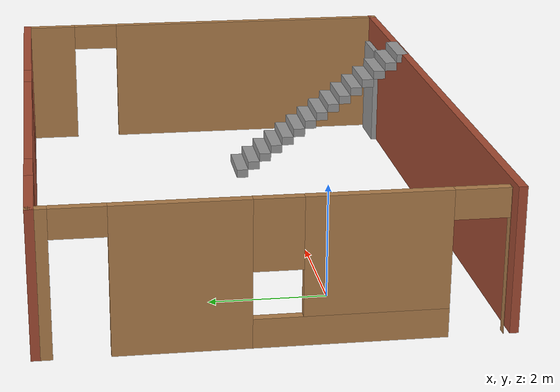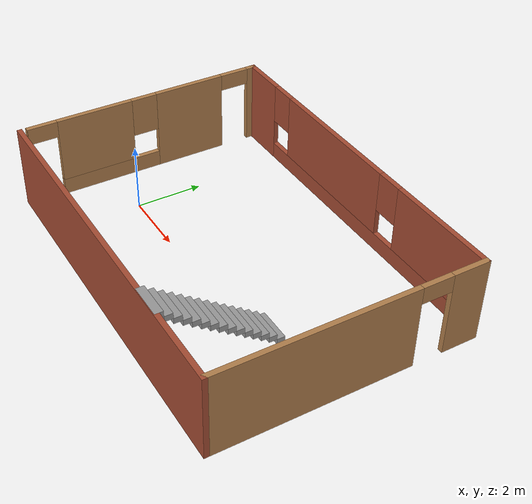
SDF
<?xml version='1.0'?>
<sdf version='1.7'>
  <model name='model1'>
    <pose>3.7072 1.08498 0 0 -0 0</pose>
    <link name='Door_2'>
      <collision name='Door_2_Collision'>
        <geometry>
          <box>
            <size>0.9 0.17 2</size>
          </box>
        </geometry>
        <pose>0 0 1 0 -0 0</pose>
      </collision>
      <visual name='Door_2_Visual'>
        <pose>0 0 1 0 -0 0</pose>
        <geometry>
          <box>
            <size>0.9 0.17 2</size>
          </box>
        </geometry>
        <material>
          <script>
            <uri>file://media/materials/scripts/gazebo.material</uri>
            <name>Gazebo/Grey</name>
          </script>
        </material>
      </visual>
      <pose>4.76464 -3.70007 0 0 -0 0</pose>
    </link>
    <link name='Stairs_0'>
      <visual name='Stairs_0_Visual_0'>
        <pose>2.74302 -0.470728 0.083333 0 -0 0</pose>
        <geometry>
          <box>
            <size>1 0.233333 0.166667</size>
          </box>
        </geometry>
        <material>
          <script>
            <uri>file://media/materials/scripts/gazebo.material</uri>
            <name>Gazebo/Grey</name>
          </script>
          <ambient>1 1 1 1</ambient>
        </material>
        <meta>
          <layer>0</layer>
        </meta>
      </visual>
      <collision name='Stairs_0_Collision_0'>
        <geometry>
          <box>
            <size>1 0.233333 0.166667</size>
          </box>
        </geometry>
        <pose>2.74302 -0.470728 0.083333 0 -0 0</pose>
      </collision>
      <visual name='Stairs_0_Visual_1'>
        <pose>2.74302 -0.704061 0.25 0 -0 0</pose>
        <geometry>
          <box>
            <size>1 0.233333 0.166667</size>
          </box>
        </geometry>
        <material>
          <script>
            <uri>file://media/materials/scripts/gazebo.material</uri>
            <name>Gazebo/Grey</name>
          </script>
          <ambient>1 1 1 1</ambient>
        </material>
        <meta>
          <layer>0</layer>
        </meta>
      </visual>
      <collision name='Stairs_0_Collision_1'>
        <geometry>
          <box>
            <size>1 0.233333 0.166667</size>
          </box>
        </geometry>
        <pose>2.74302 -0.704061 0.25 0 -0 0</pose>
      </collision>
      <visual name='Stairs_0_Visual_2'>
        <pose>2.74302 -0.937394 0.416667 0 -0 0</pose>
        <geometry>
          <box>
            <size>1 0.233333 0.166667</size>
          </box>
        </geometry>
        <material>
          <script>
            <uri>file://media/materials/scripts/gazebo.material</uri>
            <name>Gazebo/Grey</name>
          </script>
          <ambient>1 1 1 1</ambient>
        </material>
        <meta>
          <layer>0</layer>
        </meta>
      </visual>
      <collision name='Stairs_0_Collision_2'>
        <geometry>
          <box>
            <size>1 0.233333 0.166667</size>
          </box>
        </geometry>
        <pose>2.74302 -0.937394 0.416667 0 -0 0</pose>
      </collision>
      <visual name='Stairs_0_Visual_3'>
        <pose>2.74302 -1.17073 0.583333 0 -0 0</pose>
        <geometry>
          <box>
            <size>1 0.233333 0.166667</size>
          </box>
        </geometry>
        <material>
          <script>
            <uri>file://media/materials/scripts/gazebo.material</uri>
            <name>Gazebo/Grey</name>
          </script>
          <ambient>1 1 1 1</ambient>
        </material>
        <meta>
          <layer>0</layer>
        </meta>
      </visual>
      <collision name='Stairs_0_Collision_3'>
        <geometry>
          <box>
            <size>1 0.233333 0.166667</size>
          </box>
        </geometry>
        <pose>2.74302 -1.17073 0.583333 0 -0 0</pose>
      </collision>
      <visual name='Stairs_0_Visual_4'>
        <pose>2.74302 -1.40406 0.75 0 -0 0</pose>
        <geometry>
          <box>
            <size>1 0.233333 0.166667</size>
          </box>
        </geometry>
        <material>
          <script>
            <uri>file://media/materials/scripts/gazebo.material</uri>
            <name>Gazebo/Grey</name>
          </script>
          <ambient>1 1 1 1</ambient>
        </material>
        <meta>
          <layer>0</layer>
        </meta>
      </visual>
      <collision name='Stairs_0_Collision_4'>
        <geometry>
          <box>
            <size>1 0.233333 0.166667</size>
          </box>
        </geometry>
        <pose>2.74302 -1.40406 0.75 0 -0 0</pose>
      </collision>
      <visual name='Stairs_0_Visual_5'>
        <pose>2.74302 -1.63739 0.916667 0 -0 0</pose>
        <geometry>
          <box>
            <size>1 0.233333 0.166667</size>
          </box>
        </geometry>
        <material>
          <script>
            <uri>file://media/materials/scripts/gazebo.material</uri>
            <name>Gazebo/Grey</name>
          </script>
          <ambient>1 1 1 1</ambient>
        </material>
        <meta>
          <layer>0</layer>
        </meta>
      </visual>
      <collision name='Stairs_0_Collision_5'>
        <geometry>
          <box>
            <size>1 0.233333 0.166667</size>
          </box>
        </geometry>
        <pose>2.74302 -1.63739 0.916667 0 -0 0</pose>
      </collision>
      <visual name='Stairs_0_Visual_6'>
        <pose>2.74302 -1.87073 1.08333 0 -0 0</pose>
        <geometry>
          <box>
            <size>1 0.233333 0.166667</size>
          </box>
        </geometry>
        <material>
          <script>
            <uri>file://media/materials/scripts/gazebo.material</uri>
            <name>Gazebo/Grey</name>
          </script>
          <ambient>1 1 1 1</ambient>
        </material>
        <meta>
          <layer>0</layer>
        </meta>
      </visual>
      <collision name='Stairs_0_Collision_6'>
        <geometry>
          <box>
            <size>1 0.233333 0.166667</size>
          </box>
        </geometry>
        <pose>2.74302 -1.87073 1.08333 0 -0 0</pose>
      </collision>
      <visual name='Stairs_0_Visual_7'>
        <pose>2.74302 -2.10406 1.25 0 -0 0</pose>
        <geometry>
          <box>
            <size>1 0.233333 0.166667</size>
          </box>
        </geometry>
        <material>
          <script>
            <uri>file://media/materials/scripts/gazebo.material</uri>
            <name>Gazebo/Grey</name>
          </script>
          <ambient>1 1 1 1</ambient>
        </material>
        <meta>
          <layer>0</layer>
        </meta>
      </visual>
      <collision name='Stairs_0_Collision_7'>
        <geometry>
          <box>
            <size>1 0.233333 0.166667</size>
          </box>
        </geometry>
        <pose>2.74302 -2.10406 1.25 0 -0 0</pose>
      </collision>
      <visual name='Stairs_0_Visual_8'>
        <pose>2.74302 -2.33739 1.41667 0 -0 0</pose>
        <geometry>
          <box>
            <size>1 0.233333 0.166667</size>
          </box>
        </geometry>
        <material>
          <script>
            <uri>file://media/materials/scripts/gazebo.material</uri>
            <name>Gazebo/Grey</name>
          </script>
          <ambient>1 1 1 1</ambient>
        </material>
        <meta>
          <layer>0</layer>
        </meta>
      </visual>
      <collision name='Stairs_0_Collision_8'>
        <geometry>
          <box>
            <size>1 0.233333 0.166667</size>
          </box>
        </geometry>
        <pose>2.74302 -2.33739 1.41667 0 -0 0</pose>
      </collision>
      <visual name='Stairs_0_Visual_9'>
        <pose>2.74302 -2.57073 1.58333 0 -0 0</pose>
        <geometry>
          <box>
            <size>1 0.233333 0.166667</size>
          </box>
        </geometry>
        <material>
          <script>
            <uri>file://media/materials/scripts/gazebo.material</uri>
            <name>Gazebo/Grey</name>
          </script>
          <ambient>1 1 1 1</ambient>
        </material>
        <meta>
          <layer>0</layer>
        </meta>
      </visual>
      <collision name='Stairs_0_Collision_9'>
        <geometry>
          <box>
            <size>1 0.233333 0.166667</size>
          </box>
        </geometry>
        <pose>2.74302 -2.57073 1.58333 0 -0 0</pose>
      </collision>
      <visual name='Stairs_0_Visual_10'>
        <pose>2.74302 -2.80406 1.75 0 -0 0</pose>
        <geometry>
          <box>
            <size>1 0.233333 0.166667</size>
          </box>
        </geometry>
        <material>
          <script>
            <uri>file://media/materials/scripts/gazebo.material</uri>
            <name>Gazebo/Grey</name>
          </script>
          <ambient>1 1 1 1</ambient>
        </material>
        <meta>
          <layer>0</layer>
        </meta>
      </visual>
      <collision name='Stairs_0_Collision_10'>
        <geometry>
          <box>
            <size>1 0.233333 0.166667</size>
          </box>
        </geometry>
        <pose>2.74302 -2.80406 1.75 0 -0 0</pose>
      </collision>
      <visual name='Stairs_0_Visual_11'>
        <pose>2.74302 -3.03739 1.91667 0 -0 0</pose>
        <geometry>
          <box>
            <size>1 0.233333 0.166667</size>
          </box>
        </geometry>
        <material>
          <script>
            <uri>file://media/materials/scripts/gazebo.material</uri>
            <name>Gazebo/Grey</name>
          </script>
          <ambient>1 1 1 1</ambient>
        </material>
        <meta>
          <layer>0</layer>
        </meta>
      </visual>
      <collision name='Stairs_0_Collision_11'>
        <geometry>
          <box>
            <size>1 0.233333 0.166667</size>
          </box>
        </geometry>
        <pose>2.74302 -3.03739 1.91667 0 -0 0</pose>
      </collision>
      <visual name='Stairs_0_Visual_12'>
        <pose>2.74302 -3.27073 2.08333 0 -0 0</pose>
        <geometry>
          <box>
            <size>1 0.233333 0.166667</size>
          </box>
        </geometry>
        <material>
          <script>
            <uri>file://media/materials/scripts/gazebo.material</uri>
            <name>Gazebo/Grey</name>
          </script>
          <ambient>1 1 1 1</ambient>
        </material>
        <meta>
          <layer>0</layer>
        </meta>
      </visual>
      <collision name='Stairs_0_Collision_12'>
        <geometry>
          <box>
            <size>1 0.233333 0.166667</size>
          </box>
        </geometry>
        <pose>2.74302 -3.27073 2.08333 0 -0 0</pose>
      </collision>
      <visual name='Stairs_0_Visual_13'>
        <pose>2.74302 -3.50406 2.25 0 -0 0</pose>
        <geometry>
          <box>
            <size>1 0.233333 0.166667</size>
          </box>
        </geometry>
        <material>
          <script>
            <uri>file://media/materials/scripts/gazebo.material</uri>
            <name>Gazebo/Grey</name>
          </script>
          <ambient>1 1 1 1</ambient>
        </material>
        <meta>
          <layer>0</layer>
        </meta>
      </visual>
      <collision name='Stairs_0_Collision_13'>
        <geometry>
          <box>
            <size>1 0.233333 0.166667</size>
          </box>
        </geometry>
        <pose>2.74302 -3.50406 2.25 0 -0 0</pose>
      </collision>
      <visual name='Stairs_0_Visual_14'>
        <pose>2.74302 -3.73739 2.41667 0 -0 0</pose>
        <geometry>
          <box>
            <size>1 0.233333 0.166667</size>
          </box>
        </geometry>
        <material>
          <script>
            <uri>file://media/materials/scripts/gazebo.material</uri>
            <name>Gazebo/Grey</name>
          </script>
          <ambient>1 1 1 1</ambient>
        </material>
        <meta>
          <layer>0</layer>
        </meta>
      </visual>
      <collision name='Stairs_0_Collision_14'>
        <geometry>
          <box>
            <size>1 0.233333 0.166667</size>
          </box>
        </geometry>
        <pose>2.74302 -3.73739 2.41667 0 -0 0</pose>
      </collision>
    </link>
    <link name='Wall_16'>
      <pose>-5.425 0.125 0 0 -0 -1.5708</pose>
      <visual name='Wall_16_Visual_0'>
        <pose>-3.57899 0 1.25 0 -0 0</pose>
        <geometry>
          <box>
            <size>0.342022 0.15 2.5</size>
          </box>
        </geometry>
        <material>
          <script>
            <uri>file://media/materials/scripts/gazebo.material</uri>
            <name>Gazebo/Wood</name>
          </script>
          <ambient>1 1 1 1</ambient>
        </material>
        <meta>
          <layer>0</layer>
        </meta>
      </visual>
      <collision name='Wall_16_Collision_0'>
        <geometry>
          <box>
            <size>0.342022 0.15 2.5</size>
          </box>
        </geometry>
        <pose>-3.57899 0 1.25 0 -0 0</pose>
      </collision>
      <visual name='Wall_16_Visual_1'>
        <pose>-1.40347 0 1.25 0 -0 0</pose>
        <geometry>
          <box>
            <size>2.20902 0.15 2.5</size>
          </box>
        </geometry>
        <material>
          <script>
            <uri>file://media/materials/scripts/gazebo.material</uri>
            <name>Gazebo/Wood</name>
          </script>
          <ambient>1 1 1 1</ambient>
        </material>
        <meta>
          <layer>0</layer>
        </meta>
      </visual>
      <collision name='Wall_16_Collision_1'>
        <geometry>
          <box>
            <size>2.20902 0.15 2.5</size>
          </box>
        </geometry>
        <pose>-1.40347 0 1.25 0 -0 0</pose>
      </collision>
      <visual name='Wall_16_Visual_2'>
        <pose>3.74654 0 1.25 0 -0 0</pose>
        <geometry>
          <box>
            <size>0.006931 0.15 2.5</size>
          </box>
        </geometry>
        <material>
          <script>
            <uri>file://media/materials/scripts/gazebo.material</uri>
            <name>Gazebo/Wood</name>
          </script>
          <ambient>1 1 1 1</ambient>
        </material>
        <meta>
          <layer>0</layer>
        </meta>
      </visual>
      <collision name='Wall_16_Collision_2'>
        <geometry>
          <box>
            <size>0.006931 0.15 2.5</size>
          </box>
        </geometry>
        <pose>3.74654 0 1.25 0 -0 0</pose>
      </collision>
      <visual name='Wall_16_Visual_3'>
        <pose>-0.298955 0 1.25 0 -0 0</pose>
        <geometry>
          <box>
            <size>0 0.15 2.5</size>
          </box>
        </geometry>
        <material>
          <script>
            <uri>file://media/materials/scripts/gazebo.material</uri>
            <name>Gazebo/Wood</name>
          </script>
          <ambient>1 1 1 1</ambient>
        </material>
        <meta>
          <layer>0</layer>
        </meta>
      </visual>
      <collision name='Wall_16_Collision_3'>
        <geometry>
          <box>
            <size>0 0.15 2.5</size>
          </box>
        </geometry>
        <pose>-0.298955 0 1.25 0 -0 0</pose>
      </collision>
      <visual name='Wall_16_Visual_4'>
        <pose>1.27206 0 0.25 0 -0 0</pose>
        <geometry>
          <box>
            <size>3.14202 0.15 0.5</size>
          </box>
        </geometry>
        <material>
          <script>
            <uri>file://media/materials/scripts/gazebo.material</uri>
            <name>Gazebo/Wood</name>
          </script>
          <ambient>1 1 1 1</ambient>
        </material>
        <meta>
          <layer>0</layer>
        </meta>
      </visual>
      <collision name='Wall_16_Collision_4'>
        <geometry>
          <box>
            <size>3.14202 0.15 0.5</size>
          </box>
        </geometry>
        <pose>1.27206 0 0.25 0 -0 0</pose>
      </collision>
      <visual name='Wall_16_Visual_5'>
        <pose>1.67206 0 1.5 0 -0 0</pose>
        <geometry>
          <box>
            <size>2.34202 0.15 2</size>
          </box>
        </geometry>
        <material>
          <script>
            <uri>file://media/materials/scripts/gazebo.material</uri>
            <name>Gazebo/Wood</name>
          </script>
          <ambient>1 1 1 1</ambient>
        </material>
        <meta>
          <layer>0</layer>
        </meta>
      </visual>
      <collision name='Wall_16_Collision_5'>
        <geometry>
          <box>
            <size>2.34202 0.15 2</size>
          </box>
        </geometry>
        <pose>1.67206 0 1.5 0 -0 0</pose>
      </collision>
      <visual name='Wall_16_Visual_6'>
        <pose>-0.298955 0 1.9 0 -0 0</pose>
        <geometry>
          <box>
            <size>0 0.15 1.2</size>
          </box>
        </geometry>
        <material>
          <script>
            <uri>file://media/materials/scripts/gazebo.material</uri>
            <name>Gazebo/Wood</name>
          </script>
          <ambient>1 1 1 1</ambient>
        </material>
        <meta>
          <layer>0</layer>
        </meta>
      </visual>
      <collision name='Wall_16_Collision_6'>
        <geometry>
          <box>
            <size>0 0.15 1.2</size>
          </box>
        </geometry>
        <pose>-0.298955 0 1.9 0 -0 0</pose>
      </collision>
      <visual name='Wall_16_Visual_7'>
        <pose>0.101045 0 1.9 0 -0 0</pose>
        <geometry>
          <box>
            <size>0.8 0.15 1.2</size>
          </box>
        </geometry>
        <material>
          <script>
            <uri>file://media/materials/scripts/gazebo.material</uri>
            <name>Gazebo/Wood</name>
          </script>
          <ambient>1 1 1 1</ambient>
        </material>
        <meta>
          <layer>0</layer>
        </meta>
      </visual>
      <collision name='Wall_16_Collision_7'>
        <geometry>
          <box>
            <size>0.8 0.15 1.2</size>
          </box>
        </geometry>
        <pose>0.101045 0 1.9 0 -0 0</pose>
      </collision>
      <visual name='Wall_16_Visual_8'>
        <pose>-2.95798 0 2.25 0 -0 0</pose>
        <geometry>
          <box>
            <size>0.9 0.15 0.5</size>
          </box>
        </geometry>
        <material>
          <script>
            <uri>file://media/materials/scripts/gazebo.material</uri>
            <name>Gazebo/Wood</name>
          </script>
          <ambient>1 1 1 1</ambient>
        </material>
        <meta>
          <layer>0</layer>
        </meta>
      </visual>
      <collision name='Wall_16_Collision_8'>
        <geometry>
          <box>
            <size>0.9 0.15 0.5</size>
          </box>
        </geometry>
        <pose>-2.95798 0 2.25 0 -0 0</pose>
      </collision>
      <visual name='Wall_16_Visual_9'>
        <pose>3.29307 0 2.25 0 -0 0</pose>
        <geometry>
          <box>
            <size>0.9 0.15 0.5</size>
          </box>
        </geometry>
        <material>
          <script>
            <uri>file://media/materials/scripts/gazebo.material</uri>
            <name>Gazebo/Wood</name>
          </script>
          <ambient>1 1 1 1</ambient>
        </material>
        <meta>
          <layer>0</layer>
        </meta>
      </visual>
      <collision name='Wall_16_Collision_9'>
        <geometry>
          <box>
            <size>0.9 0.15 0.5</size>
          </box>
        </geometry>
        <pose>3.29307 0 2.25 0 -0 0</pose>
      </collision>
    </link>
    <link name='Wall_20'>
      <pose>-0 3.8 0 0 -0 0</pose>
      <visual name='Wall_20_Visual_0'>
        <pose>-4.74391 0 1.25 0 -0 0</pose>
        <geometry>
          <box>
            <size>1.51218 0.15 2.5</size>
          </box>
        </geometry>
        <material>
          <script>
            <uri>file://media/materials/scripts/gazebo.material</uri>
            <name>Gazebo/Bricks</name>
          </script>
          <ambient>1 1 1 1</ambient>
        </material>
        <meta>
          <layer>0</layer>
        </meta>
      </visual>
      <collision name='Wall_20_Collision_0'>
        <geometry>
          <box>
            <size>1.51218 0.15 2.5</size>
          </box>
        </geometry>
        <pose>-4.74391 0 1.25 0 -0 0</pose>
      </collision>
      <visual name='Wall_20_Visual_1'>
        <pose>0.756088 0 0.25 0 -0 0</pose>
        <geometry>
          <box>
            <size>9.48783 0.15 0.5</size>
          </box>
        </geometry>
        <material>
          <script>
            <uri>file://media/materials/scripts/gazebo.material</uri>
            <name>Gazebo/Bricks</name>
          </script>
          <ambient>1 1 1 1</ambient>
        </material>
        <meta>
          <layer>0</layer>
        </meta>
      </visual>
      <collision name='Wall_20_Collision_1'>
        <geometry>
          <box>
            <size>9.48783 0.15 0.5</size>
          </box>
        </geometry>
        <pose>0.756088 0 0.25 0 -0 0</pose>
      </collision>
      <visual name='Wall_20_Visual_2'>
        <pose>-0.954405 0 1.5 0 -0 0</pose>
        <geometry>
          <box>
            <size>4.46684 0.15 2</size>
          </box>
        </geometry>
        <material>
          <script>
            <uri>file://media/materials/scripts/gazebo.material</uri>
            <name>Gazebo/Bricks</name>
          </script>
          <ambient>1 1 1 1</ambient>
        </material>
        <meta>
          <layer>0</layer>
        </meta>
      </visual>
      <collision name='Wall_20_Collision_2'>
        <geometry>
          <box>
            <size>4.46684 0.15 2</size>
          </box>
        </geometry>
        <pose>-0.954405 0 1.5 0 -0 0</pose>
      </collision>
      <visual name='Wall_20_Visual_3'>
        <pose>3.78951 0 1.5 0 -0 0</pose>
        <geometry>
          <box>
            <size>3.42099 0.15 2</size>
          </box>
        </geometry>
        <material>
          <script>
            <uri>file://media/materials/scripts/gazebo.material</uri>
            <name>Gazebo/Bricks</name>
          </script>
          <ambient>1 1 1 1</ambient>
        </material>
        <meta>
          <layer>0</layer>
        </meta>
      </visual>
      <collision name='Wall_20_Collision_3'>
        <geometry>
          <box>
            <size>3.42099 0.15 2</size>
          </box>
        </geometry>
        <pose>3.78951 0 1.5 0 -0 0</pose>
      </collision>
      <visual name='Wall_20_Visual_4'>
        <pose>-3.58783 0 1.9 0 -0 0</pose>
        <geometry>
          <box>
            <size>0.8 0.15 1.2</size>
          </box>
        </geometry>
        <material>
          <script>
            <uri>file://media/materials/scripts/gazebo.material</uri>
            <name>Gazebo/Bricks</name>
          </script>
          <ambient>1 1 1 1</ambient>
        </material>
        <meta>
          <layer>0</layer>
        </meta>
      </visual>
      <collision name='Wall_20_Collision_4'>
        <geometry>
          <box>
            <size>0.8 0.15 1.2</size>
          </box>
        </geometry>
        <pose>-3.58783 0 1.9 0 -0 0</pose>
      </collision>
      <visual name='Wall_20_Visual_5'>
        <pose>1.67901 0 1.9 0 -0 0</pose>
        <geometry>
          <box>
            <size>0.8 0.15 1.2</size>
          </box>
        </geometry>
        <material>
          <script>
            <uri>file://media/materials/scripts/gazebo.material</uri>
            <name>Gazebo/Bricks</name>
          </script>
          <ambient>1 1 1 1</ambient>
        </material>
        <meta>
          <layer>0</layer>
        </meta>
      </visual>
      <collision name='Wall_20_Collision_5'>
        <geometry>
          <box>
            <size>0.8 0.15 1.2</size>
          </box>
        </geometry>
        <pose>1.67901 0 1.9 0 -0 0</pose>
      </collision>
    </link>
    <link name='Wall_21'>
      <pose>5.425 0 0 0 -0 -1.5708</pose>
      <visual name='Wall_21_Visual_0'>
        <pose>-3.33159 0 1.25 0 -0 0</pose>
        <geometry>
          <box>
            <size>1.08683 0.15 2.5</size>
          </box>
        </geometry>
        <material>
          <script>
            <uri>file://media/materials/scripts/gazebo.material</uri>
            <name>Gazebo/Wood</name>
          </script>
          <ambient>1 1 1 1</ambient>
        </material>
        <meta>
          <layer>0</layer>
        </meta>
      </visual>
      <collision name='Wall_21_Collision_0'>
        <geometry>
          <box>
            <size>1.08683 0.15 2.5</size>
          </box>
        </geometry>
        <pose>-3.33159 0 1.25 0 -0 0</pose>
      </collision>
      <visual name='Wall_21_Visual_1'>
        <pose>0.993414 0 1.25 0 -0 0</pose>
        <geometry>
          <box>
            <size>5.76317 0.15 2.5</size>
          </box>
        </geometry>
        <material>
          <script>
            <uri>file://media/materials/scripts/gazebo.material</uri>
            <name>Gazebo/Wood</name>
          </script>
          <ambient>1 1 1 1</ambient>
        </material>
        <meta>
          <layer>0</layer>
        </meta>
      </visual>
      <collision name='Wall_21_Collision_1'>
        <geometry>
          <box>
            <size>5.76317 0.15 2.5</size>
          </box>
        </geometry>
        <pose>0.993414 0 1.25 0 -0 0</pose>
      </collision>
      <visual name='Wall_21_Visual_2'>
        <pose>-2.33817 0 2.25 0 -0 0</pose>
        <geometry>
          <box>
            <size>0.9 0.15 0.5</size>
          </box>
        </geometry>
        <material>
          <script>
            <uri>file://media/materials/scripts/gazebo.material</uri>
            <name>Gazebo/Wood</name>
          </script>
          <ambient>1 1 1 1</ambient>
        </material>
        <meta>
          <layer>0</layer>
        </meta>
      </visual>
      <collision name='Wall_21_Collision_2'>
        <geometry>
          <box>
            <size>0.9 0.15 0.5</size>
          </box>
        </geometry>
        <pose>-2.33817 0 2.25 0 -0 0</pose>
      </collision>
    </link>
    <link name='Wall_22'>
      <collision name='Wall_22_Collision'>
        <geometry>
          <box>
            <size>11 0.15 2.5</size>
          </box>
        </geometry>
        <pose>0 0 1.25 0 -0 0</pose>
      </collision>
      <visual name='Wall_22_Visual'>
        <pose>0 0 1.25 0 -0 0</pose>
        <geometry>
          <box>
            <size>11 0.15 2.5</size>
          </box>
        </geometry>
        <material>
          <script>
            <uri>file://media/materials/scripts/gazebo.material</uri>
            <name>Gazebo/Bricks</name>
          </script>
          <ambient>1 1 1 1</ambient>
        </material>
        <meta>
          <layer>0</layer>
        </meta>
      </visual>
      <pose>-0 -3.8 0 0 -0 3.14159</pose>
    </link>
    <static>1</static>
  </model>
</sdf>
